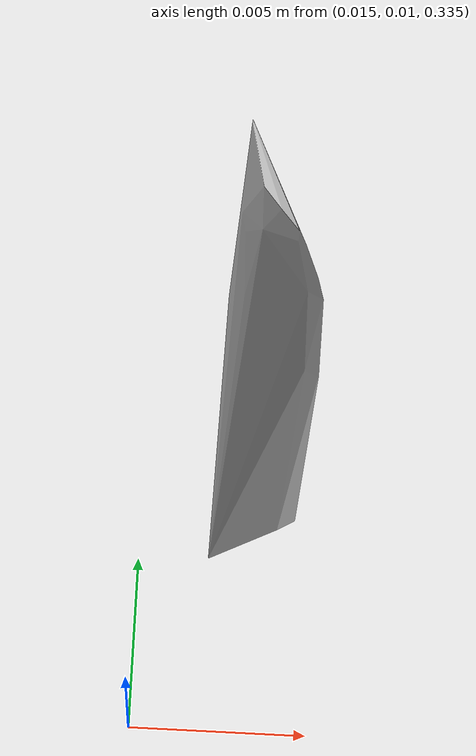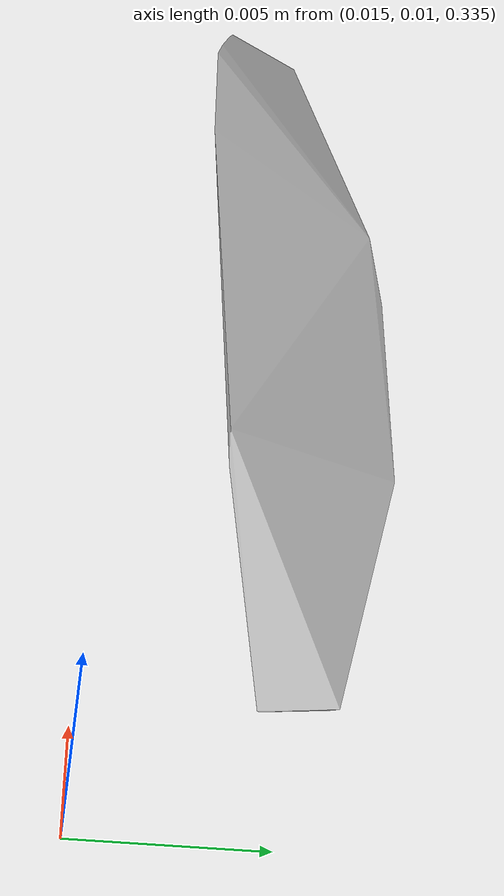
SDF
<?xml version="1.0"?>
<sdf version="1.7">
  <model name="vascular_partexport049">
    <link name="vascular_partexport049_body">
      <visual name="vascular_partexport049_visual">
        <geometry>
          <mesh>
            <uri>vascular_partexport049.obj</uri>
          </mesh>
        </geometry>
      </visual>
      <collision name="vascular_partexport049_collision">
        <geometry>
          <mesh>
            <uri>vascular_partexport049.obj</uri>
          </mesh>
        </geometry>
      </collision>
    </link>
    <frame name="vascular_partexport049_center">
      <pose relative_to="vascular_partexport049_body">0 0 0 0 0 0</pose>
    </frame>
  </model>
</sdf>
